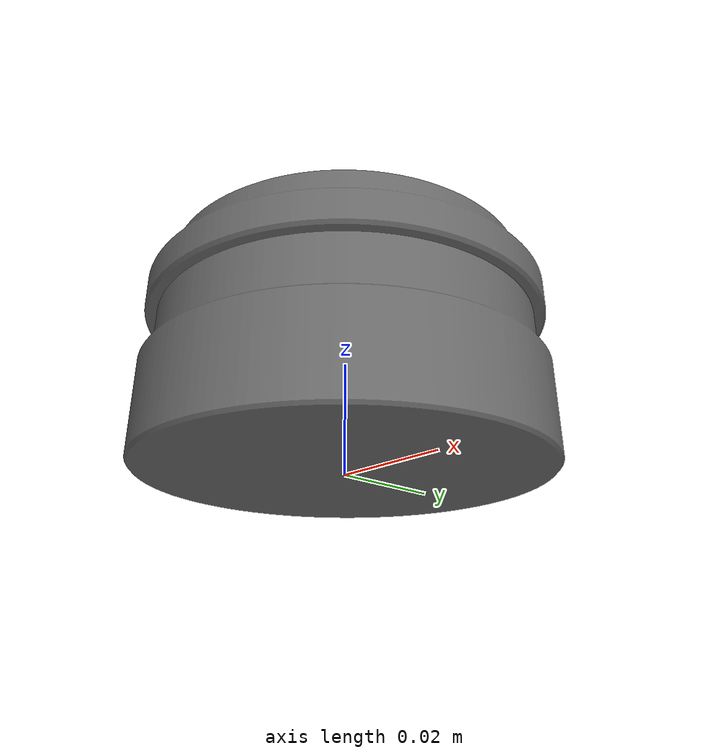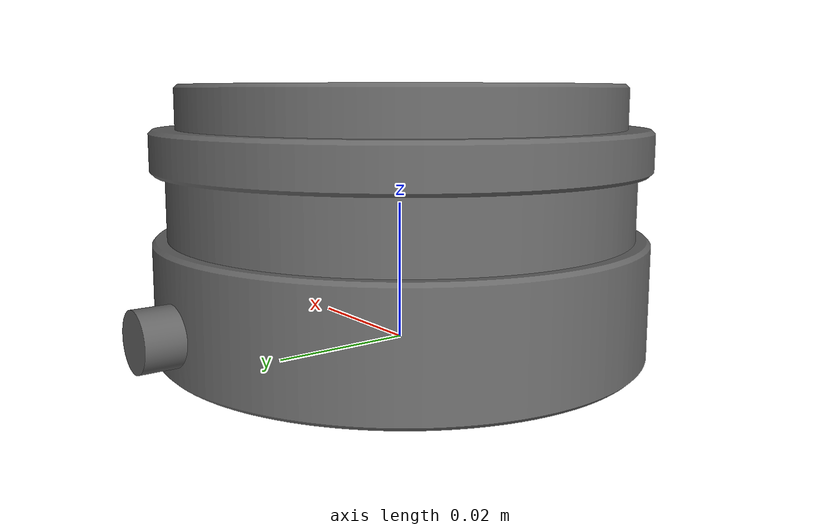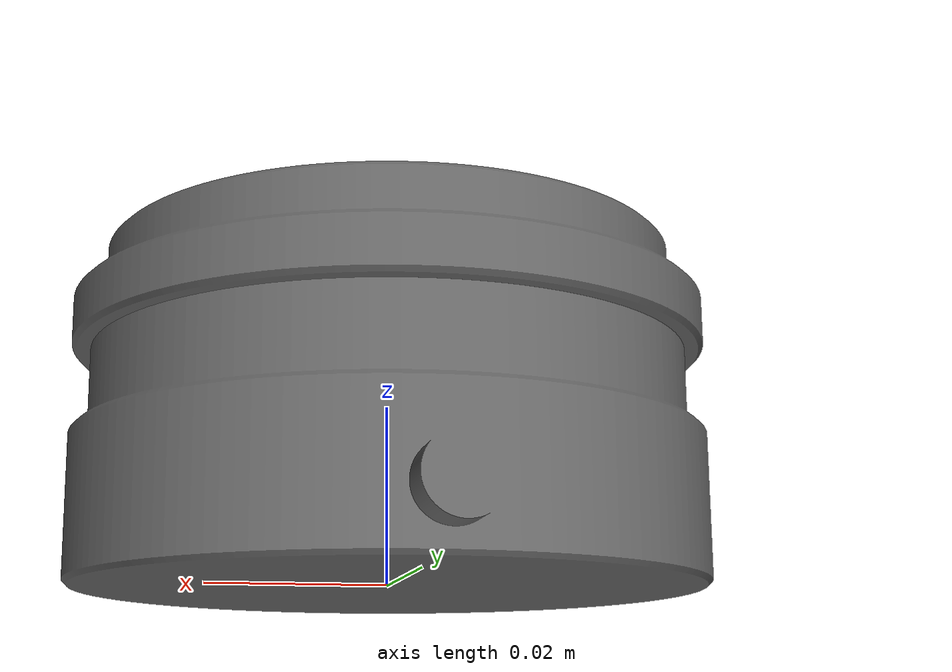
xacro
<?xml version="1.0"?>
<robot xmlns:xacro="http://wiki.ros.org/xacro" name="onrobot_hex">

  <link name="hex_mounting_plate">
    <inertial>
      <origin xyz="0 0 0.016" rpy="-${pi/2} 0 0"/>
      <mass value="0.245"/>
      <inertia ixx="${99 / 1000000}" ixy="0" ixz="0" iyy="${142 / 1000000}" iyx="0" iyz="${-0.2 / 1000000}" izz="${99 / 1000000}" izx="0" izy="${-0.2 / 1000000}"/>
    </inertial>
    <visual>
      <origin xyz="0 0 0.016" rpy="-${pi/2} 0 0" />
      <geometry>
          <mesh filename="package://artificial_hands_description/meshes/visual/onrobot_hex_e.stl"/>
      </geometry>
      <material name="onrobot-grey">
          <color rgba="0.4 0.4 0.4 1.0"/>
      </material>
    </visual>
    <collision>
      <origin xyz="0 0 0.016" rpy="-${pi/2} 0 0" />
      <geometry>
          <mesh filename="package://artificial_hands_description/meshes/collision/onrobot_hex_e.stl"/>
      </geometry>
    </collision>
  </link>

  <gazebo reference="hex_mounting_plate">
    <selfCollide>false</selfCollide>
  </gazebo>

  <link name="hex_sensor_frame"/>

  <joint name="hex_sensor_joint" type="fixed">
    <origin xyz="0 0 0.037" rpy="0 0 0" />
    <parent link="hex_mounting_plate" />
    <child link="hex_sensor_frame" />
  </joint>

  <link name="hex_ee_mounting_plate"/>

  <joint name="hex_ee_mounting_joint" type="fixed">
    <origin xyz="0 0 0" rpy="0 0 0" />
    <parent link="hex_sensor_frame" />
    <child link="hex_ee_mounting_plate" />
  </joint>

  <!-- Enable joint feedback representing the ft_sensor-->
  <gazebo reference="hex_sensor_joint">
    <preserveFixedJoint>true</preserveFixedJoint>
    <provideFeedback>true</provideFeedback>
  </gazebo>

  <!-- The ft_sensor plugin -->
  <gazebo>
    <plugin name="gazebo_ft_sensor" filename="libgazebo_ros_ft_sensor.so">
      <updateRate>500.0</updateRate>
        <topicName>gazebo/ft_sensor</topicName>
        <jointName>hex_sensor_joint</jointName>
    </plugin>
  </gazebo>

</robot>
